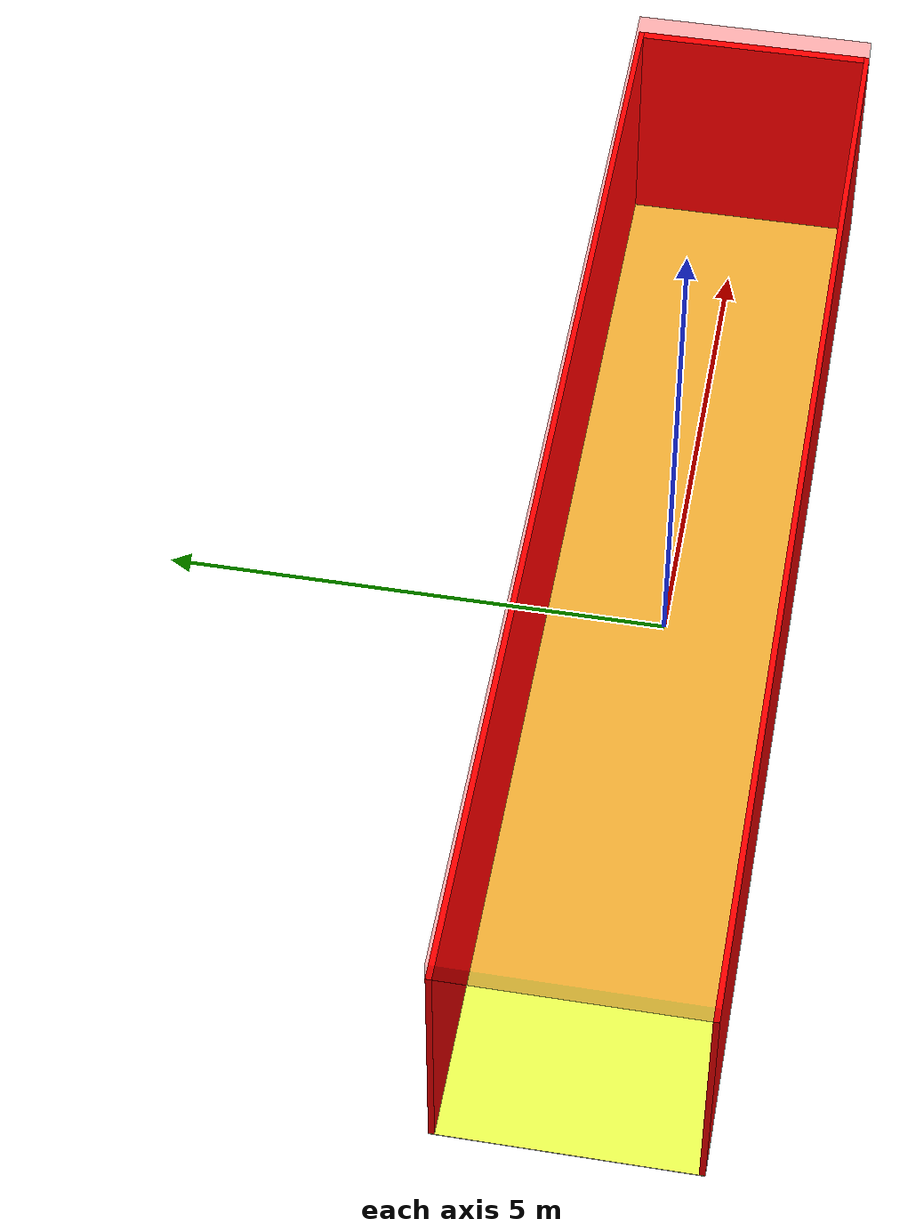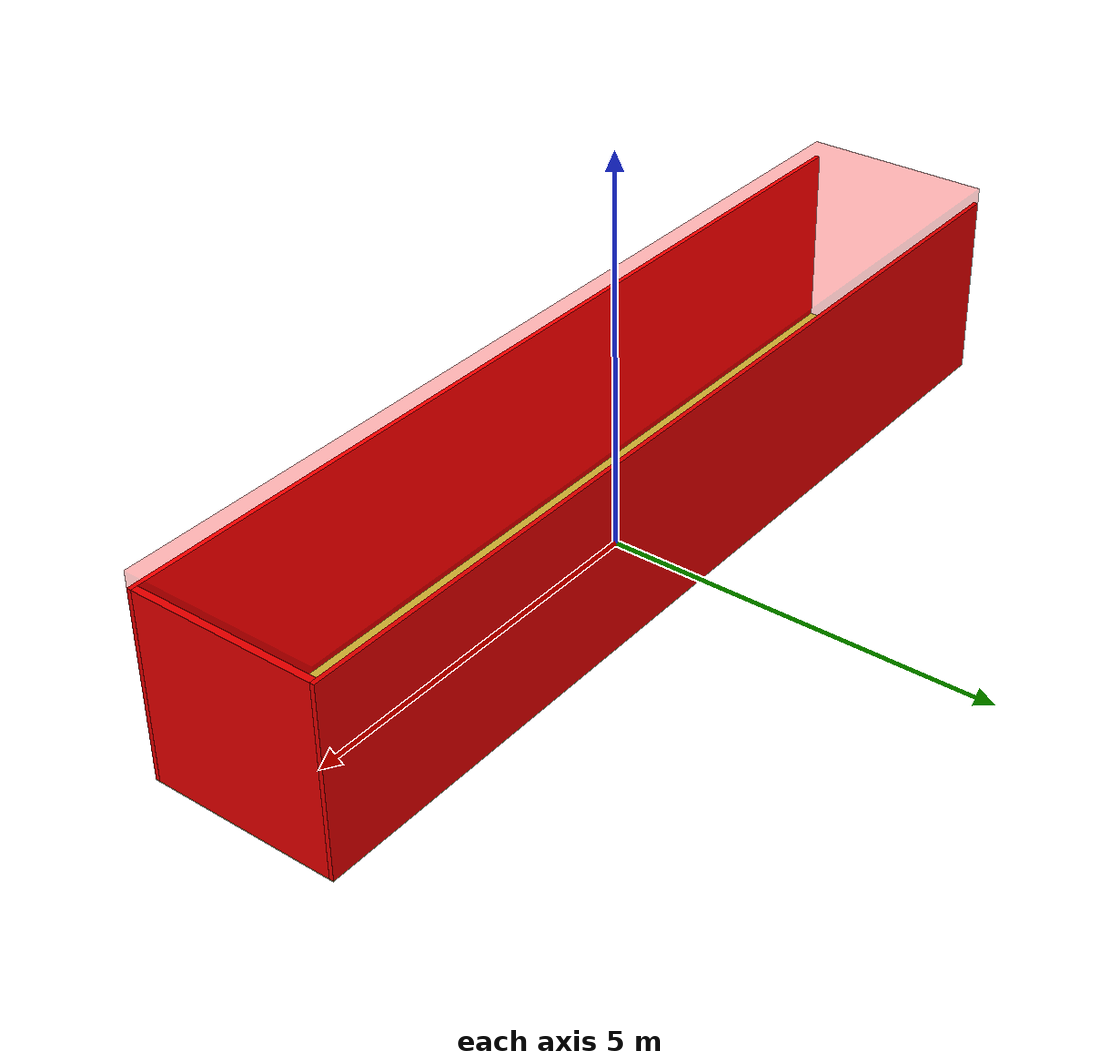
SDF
<?xml version="1.0"?>
<sdf version="1.7">
    <model name="std_cargo_container_40ft" canonical_link="container_link" placement_frame="container_link">
        <static>false</static>
        <self_collide>false</self_collide>

        <!--
        The container_link is at the center of the bottom face of the container.
        -->
        <link name="container_link">
            <visual name="floor_visual">
                <geometry>
                    <box>
                        <!--
                        sx = size_x_outer = 12.19 m
                        sy = size_y_outer = 2.44 m
                        sz = 0.005 m
                        -->
                        <size>12.19 2.44 0.005</size>
                    </box>
                </geometry>
                <!--
                pz = sz * 0.5 = 0.005 * 0.5 = 0.0025 m
                -->
                <pose>0 0 0.0025 0 0 0</pose>
                <material>
                    <ambient>0.9 1.0 0.3 1</ambient>
                    <diffuse>0.9 1.0 0.3 1</diffuse>
                    <specular>0.3 0.3 0.1 1</specular>
                </material>
            </visual>

            <visual name="left_wall_visual">
                <geometry>
                    <box>
                        <!--
                        sx = size_x_outer = 12.19 m
                        sy = diff_y * 0.5 = 0.11 * 0.5 = 0.055 m
                        sz = size_z_inner = 2.38 m
                        -->
                        <size>12.19 0.055 2.38</size>
                    </box>
                </geometry>
                <pose>0 1.1925 1.195 0 0 0</pose>
                <material>
                    <ambient>1 0 0 1</ambient>
                    <diffuse>1 0 0 1</diffuse>
                    <specular>0.2 0.2 0.2 1</specular>
                </material>
            </visual>

            <visual name="right_wall_visual">
                <geometry>
                    <!--
                    sx = size_x_outer = 12.19 m
                    sy = diff_y * 0.5 = 0.11 * 0.5 = 0.055 m
                    sz = size_z_inner = 2.38 m
                    -->
                    <box>
                        <size>12.19 0.055 2.38</size>
                    </box>
                </geometry>
                <pose>0 -1.1925 1.195 0 0 0</pose>
                <material>
                    <ambient>1 0 0 1</ambient>
                    <diffuse>1 0 0 1</diffuse>
                    <specular>0.2 0.2 0.2 1</specular>
                </material>
            </visual>

            <visual name="ceiling_visual">
                <geometry>
                    <!--
                    sx = size_x_outer = 12.19 m
                    sy = size_y_outer = 2.44 m
                    sz = diff_z - 0.005 = 0.21 - 0.005 = 0.205 m
                    -->
                    <box>
                        <size>12.19 2.44 0.205</size>
                    </box>
                </geometry>
                <!--
                pz = sz_floor + sz_wall + (sz * 0.5)  =
                   = 0.005 + 2.38 + (0.205 * 0.5) = 2.4875
                -->
                <pose>0 0 2.4875 0 0 0</pose>
                <material>
                    <ambient>1 0 0 0.3</ambient>
                    <diffuse>1 0 0 0.3</diffuse>
                    <specular>0.2 0.2 0.2 1</specular>
                </material>
            </visual>

            <visual name="front_wall_visual">
                <geometry>
                    <!--
                    sx = diff_x * 0.5 = 0.18 * 0.5 = 0.09 m
                    sy = size_y_inner = 2.33 m
                    sz = size_z_inner = 2.38 m
                    -->
                    <box>
                        <size>0.09 2.33 2.38</size>
                    </box>
                </geometry>
                <pose>6.050 0 1.195 0 0 0</pose>
                <material>
                    <ambient>1 0 0 1</ambient>
                    <diffuse>1 0 0 1</diffuse>
                    <specular>0.2 0.2 0.2 1</specular>
                </material>
            </visual>

            <collision name="floor_collision">
                <geometry>
                    <box>
                        <size>12.19 2.44 0.005</size>
                    </box>
                </geometry>
                <pose>0 0 0.0025 0 0 0</pose>
            </collision>

            <collision name="left_wall_collision">
                <geometry>
                    <box>
                        <size>12.19 0.055 2.38</size>
                    </box>
                </geometry>
                <pose>0 1.1925 1.195 0 0 0</pose>
            </collision>

            <collision name="right_wall_collision">
                <geometry>
                    <box>
                        <size>12.19 0.055 2.38</size>
                    </box>
                </geometry>
                <pose>0 -1.1925 1.195 0 0 0</pose>
            </collision>

            <collision name="ceiling_collision">
                <geometry>
                    <box>
                        <size>12.19 2.44 0.205</size>
                    </box>
                </geometry>
                <pose>0 0 2.4875 0 0 0</pose>
            </collision>

            <collision name="front_wall_collision">
                <geometry>
                    <box>
                        <size>0.09 2.33 2.38</size>
                    </box>
                </geometry>
                <pose>6.050 0 1.195 0 0 0</pose>
            </collision>

            <inertial>
                <mass>3701.0</mass>
                <inertia>
                    <ixx>3905.079308</ixx>
                    <ixy>0.0</ixy>
                    <ixz>0.0</ixz>
                    <iyy>47898.403683</iyy>
                    <iyz>0.0</iyz>
                    <izz>47665.703308</izz>
                </inertia>
                <pose>0 0 1.195 0 0 0</pose>
            </inertial>
            <pose>0 0 0 0 0 0</pose>
        </link>
    </model>
</sdf>
